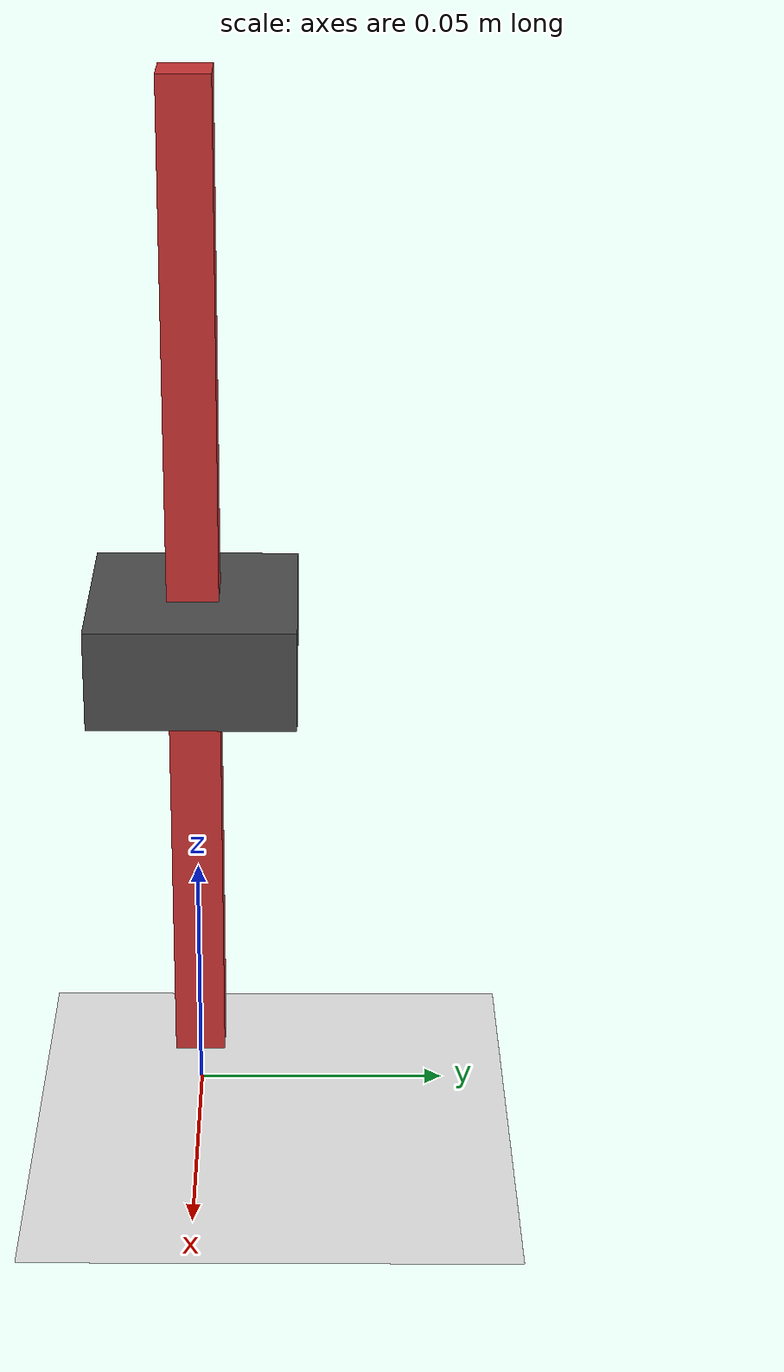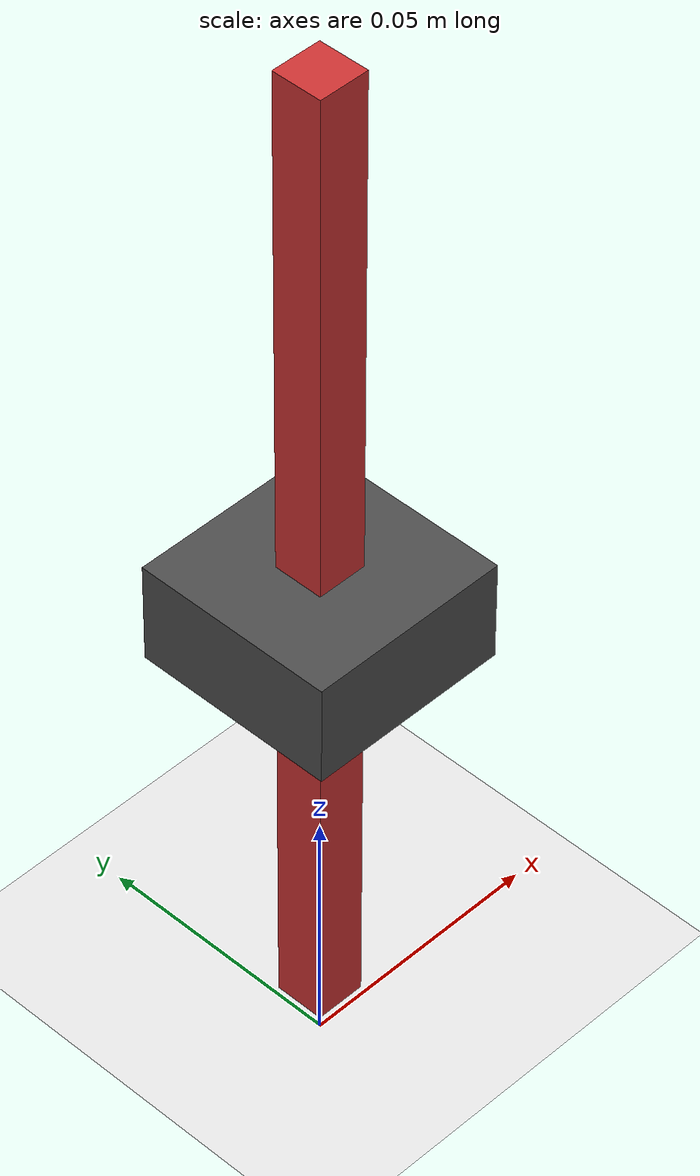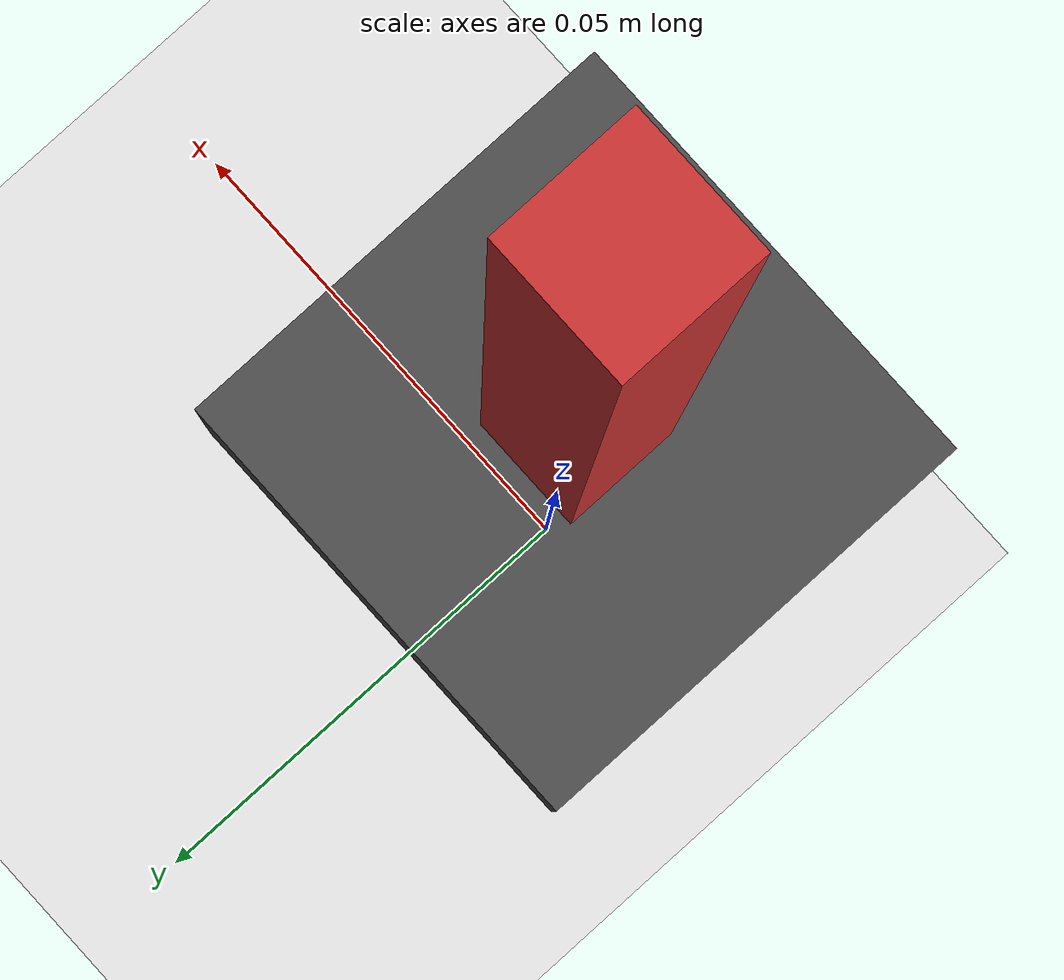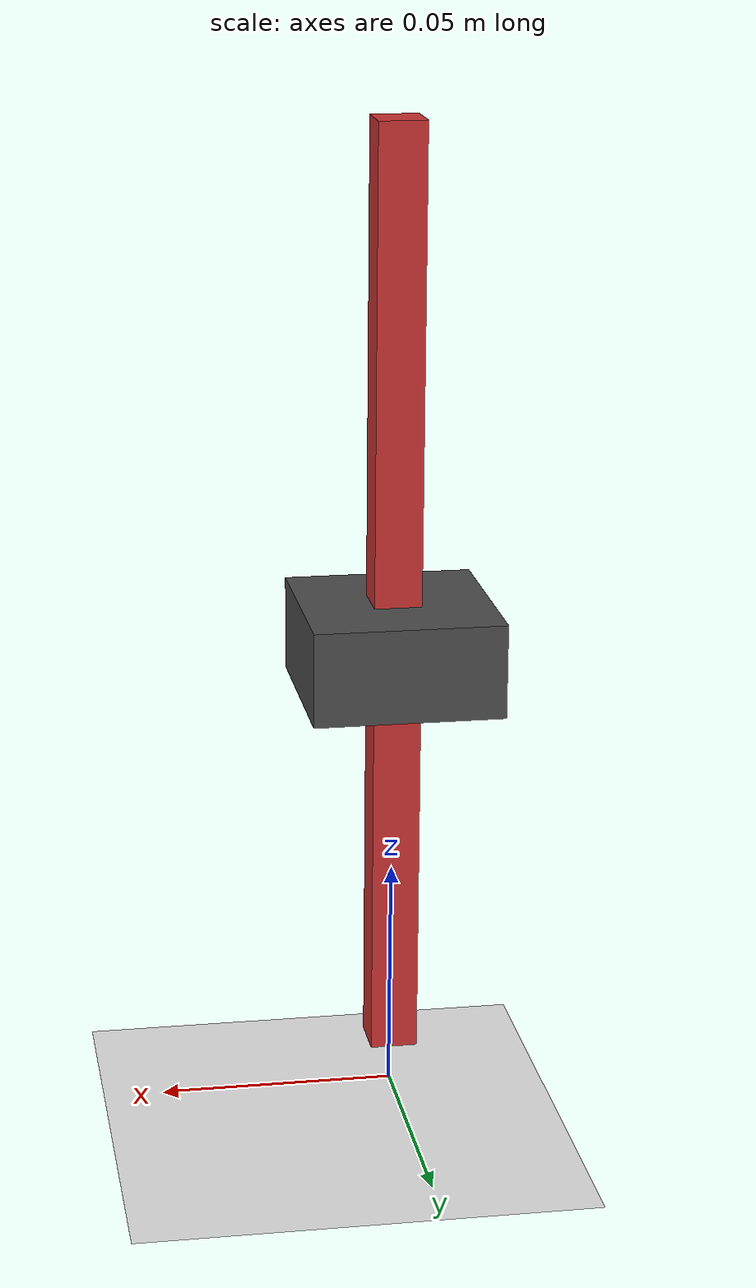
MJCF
<?xml version="1.0" ?>
<mujoco model="unstable_gripper">
  <compiler angle="radian"/>
  <option timestep="0.002" gravity="0 0 -9.81"/>

  <worldbody>
    <light diffuse=".5 .5 .5" pos="0 0 3" dir="0 0 -1"/>
    <geom name="floor" type="plane" size="1 1 0.1" rgba=".9 .9 .9 1"/>

    <body name="base" pos="0 0 0.1">
      <geom name="base_geom" type="box" size="0.02 0.02 0.01" mass="0.001" rgba="0.3 0.3 0.3 1"/>

      <body name="finger_heavy" pos="0 0 0.01">
        <joint name="finger_joint" type="hinge" axis="0 1 0" range="-1.5 1.5" damping="0"/>
        <geom name="finger_geom" type="box" size="0.005 0.005 0.1" mass="1000" rgba="0.8 0.2 0.2 1"/>
      </body>
    </body>
  </worldbody>

  <actuator>
    <position name="finger_act" joint="finger_joint" kp="1"/>
  </actuator>
</mujoco>
